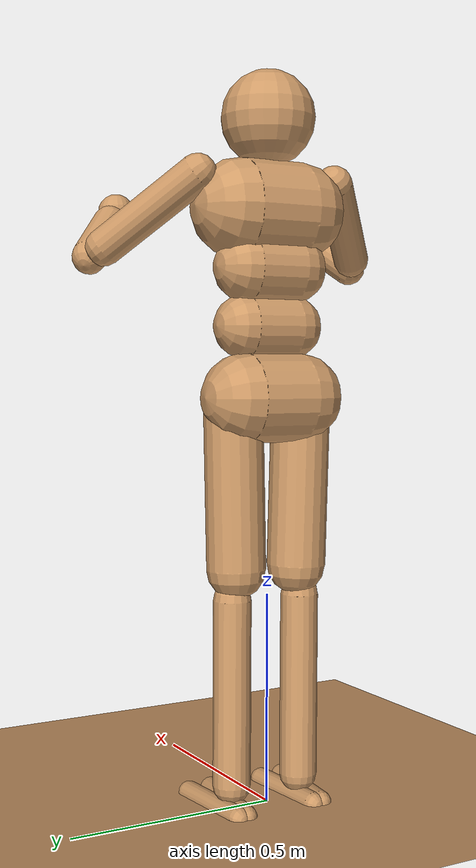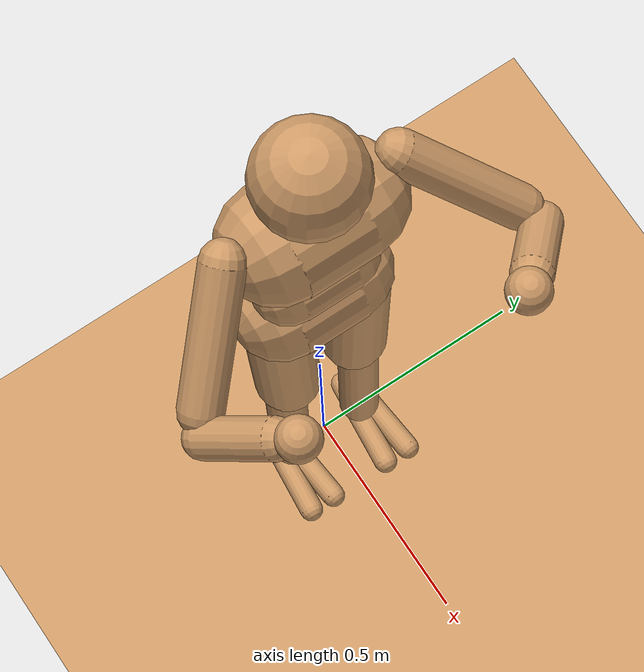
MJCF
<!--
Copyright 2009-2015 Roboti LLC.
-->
<mujoco model='humanoid (v1.31)'>
    <compiler inertiafromgeom='true' angle='degree'/>

    <default>
        <joint limited='true' damping='1' armature='0'  />
        <geom contype='1' conaffinity='1' condim='1' rgba='0.8 0.6 .4 1'
        	margin="0.001" solref=".02 1" solimp=".8 .8 .01" material="geom"/>
        <motor ctrlrange='-.4 .4' ctrllimited='true'/>
    </default>

    <option timestep='0.002' iterations="50" solver="PGS">
        <flag energy="enable"/>
    </option>

	<size nkey='5'/>

    <visual>
        <map fogstart="3" fogend="5" force="0.1"/>
        <quality shadowsize="2048"/>
    </visual>

    <asset>
        <texture type="skybox" builtin="gradient" width="100" height="100" rgb1=".4 .6 .8"
            rgb2="0 0 0"/>
        <texture name="texgeom" type="cube" builtin="flat" mark="cross" width="127" height="1278"
            rgb1="0.8 0.6 0.4" rgb2="0.8 0.6 0.4" markrgb="1 1 1" random="0.01"/>
        <texture name="texplane" type="2d" builtin="checker" rgb1=".2 .3 .4" rgb2=".1 0.15 0.2"
            width="100" height="100"/>

        <material name='MatPlane' reflectance='0.5' texture="texplane" texrepeat="1 1" texuniform="true"/>
        <material name='geom' texture="texgeom" texuniform="true"/>
    </asset>

    <worldbody>
        <geom name='floor' pos='0 0 0' size='10 10 0.125' type='plane' material="MatPlane" condim='3'/>

        <body name='torso' pos='0 0 1.4'>
            <light mode='trackcom' directional='false' diffuse='.8 .8 .8' specular='0.3 0.3 0.3' pos='0 0 4.0' dir='0 0 -1'/>

            <joint name='root' type='free' pos='0 0 0' limited='false' damping='0' armature='0' stiffness='0'/>
            <geom name='torso1' type='capsule' fromto='0 -.075 0 0 .075 0'  size='0.115' />
            <geom name='head' type='sphere' pos='0 0 .21' size='.11'/>
            <geom name='uwaist' type='capsule' fromto='-.01 -.06 -0.134934958 -.01 .06 -0.134934958' size='0.08'/>
            <body name='lwaist' pos='0 0 -0.26953098724' quat='1.000 0 -0.002 0' >
                <geom name='lwaist' type='capsule' fromto='0 -.06 0 0 .06 0'  size='0.075' />
                <joint name='abdomen_z' type='hinge' pos='0 0 0.065' axis='0 0 1' range='-45 45' damping='5' stiffness='20' armature='0.02' />
                <joint name='abdomen_y' type='hinge' pos='0 0 0.065' axis='0 1 0' range='-75 30' damping='5' stiffness='10' armature='0.02' />
                <body name='pelvis' pos='0 0 -0.165' quat='1.000 0 -0.002 0' >
                    <joint name='abdomen_x' type='hinge' pos='0 0 0.1' axis='1 0 0' range='-35 35' damping='5' stiffness='10' armature='0.02' />
                    <geom name='butt' type='capsule' fromto='-.02 -.07 0 -.02 .07 0'  size='0.105' />
                    <body name='right_thigh' pos='0 -0.0920235 0' >
                        <joint name='right_hip_x' type='hinge' pos='0 0 0' axis='1 0 0' range='-25 5'   damping='5' stiffness='10' armature='0.01' />
                        <joint name='right_hip_z' type='hinge' pos='0 0 0' axis='0 0 1' range='-60 35'  damping='5' stiffness='10' armature='0.01' />
                        <joint name='right_hip_y' type='hinge' pos='0 0 0' axis='0 1 0' range='-110 20' damping='5' stiffness='20' armature='0.0080' />
                        <geom name='right_thigh1' type='capsule' fromto='0 0 0 0 0.01 -.40'  size='0.07' />
                        <body name='right_shin' pos='0 0.0 -0.472415' >
                            <joint name='right_knee' type='hinge' pos='0 0 0' axis='0 -1 0' range='-160 -2' armature='0.0060' />
                            <geom name='right_shin1' type='capsule' fromto='0 0 0 0 0 -.44'   size='0.045' />
                            <body name='right_foot' pos='0 0 -0.494431' >
                                <joint name='right_ankle_y' type='hinge' pos='0 0 0.0' axis='0 1 0'   range='-50 50' stiffness='4000' armature='0.0008' />
                                <joint name='right_ankle_x' type='hinge' pos='0 0 0.0' axis='1 0 0.5' range='-50 50' stiffness='1000'  armature='0.0006' />
                                <geom name='right_foot_cap1' type='capsule' fromto='-.07 -0.02 0 0.14 -0.04 0'  size='0.026325' />
                                <geom name='right_foot_cap2' type='capsule' fromto='-.07 0 0 0.14  0.02 0'  size='0.026325' />
                            </body>
                        </body>
                    </body>
                    <body name='left_thigh' pos='0 0.0920235 0' >
                        <joint name='left_hip_x' type='hinge' pos='0 0 0' axis='-1 0 0' range='-25 5'  damping='5' stiffness='10' armature='0.01' />
                        <joint name='left_hip_z' type='hinge' pos='0 0 0' axis='0 0 -1' range='-60 35' damping='5' stiffness='10' armature='0.01' />
                        <joint name='left_hip_y' type='hinge' pos='0 0 0' axis='0 1 0' range='-120 20' damping='5' stiffness='20' armature='0.01' />
                        <geom name='left_thigh1' type='capsule' fromto='0 0 0 0 -0.01 -.40'  size='0.07' />
                        <body name='left_shin' pos='0 0.0 -0.472415' >
                            <joint name='left_knee' type='hinge' pos='0 0 0' axis='0 -1 0' range='-160 -2' stiffness='1' armature='0.0060' />
                            <geom name='left_shin1' type='capsule' fromto='0 0 0 0 0 -.44'   size='0.045' />
                            <body name='left_foot' pos='0 0 -0.494431' >
                                <joint name='left_ankle_y' type='hinge' pos='0 0 0.0' axis='0 1 0'   range='-50 50'  stiffness='4000' armature='0.0008' />
                                <joint name='left_ankle_x' type='hinge' pos='0 0 0.0' axis='1 0 0.5' range='-50 50'  stiffness='1000'  armature='0.0006' />
                                <geom name='left_foot_cap1' type='capsule' fromto='-.07 0.02 0 0.14 0.04 0'  size='0.026325' />
                                <geom name='left_foot_cap2' type='capsule' fromto='-.07 0 0 0.14  -0.02 0'  size='0.026325' />
                            </body>
                        </body>
                    </body>
                </body>
            </body>
            <body name='right_upper_arm' pos='0 -0.183499 0.071838' >
                <joint name='right_shoulder1' type='hinge' pos='0 0 0' axis='2 1 1'  range='-85 60' stiffness='1' armature='0.0068' />
                <joint name='right_shoulder2' type='hinge' pos='0 0 0' axis='0 -1 1' range='-85 60' stiffness='1'  armature='0.0051' />
                <geom name='right_uarm1' type='capsule' fromto='0 0 0 .16 -.16 -.16'  size='0.044 0.16' />
                <body name='right_lower_arm' pos='0.18987780183 -0.18987780183 -0.18987780183' >
                    <joint name='right_elbow' type='hinge' pos='0 0 0' axis='0 -1 1' range='-90 50'  stiffness='0' armature='0.0028' />
                    <geom name='right_larm' type='capsule' fromto='0.01 0.01 0.01 0.10352207403 0.10352207403 0.10352207403'  size='0.041' />
                    <geom name='right_hand' type='sphere' pos='0.13274148714 0.13274148714 0.13274148714'  size='0.044'/>
                </body>
            </body>
            <body name='left_upper_arm' pos='0 0.183499 0.071838' >
                <joint name='left_shoulder1' type='hinge' pos='0 0 0' axis='2 -1 1' range='-60 85' stiffness='1' armature='0.0068' />
                <joint name='left_shoulder2' type='hinge' pos='0 0 0' axis='0 1 1' range='-60 85'  stiffness='1' armature='0.0051' />
                <geom name='left_uarm1' type='capsule' fromto='0 0 0 .16 .16 -.16'  size='0.044 0.16' />
                <body name='left_lower_arm' pos='0.18987780183 0.18987780183 -0.18987780183' >
                    <joint name='left_elbow' type='hinge' pos='0 0 0' axis='0 -1 -1' range='-90 50' stiffness='0' armature='0.0028' />
                    <geom name='left_larm' type='capsule' fromto='0.01 -0.01 0.01 0.10352207403 -0.10352207403 0.10352207403'  size='0.041' />
                    <geom name='left_hand' type='sphere' pos='0.13274148714 -0.13274148714 0.13274148714'  size='0.044'/>
                </body>
            </body>
        </body>
    </worldbody>

    <tendon>
        <fixed name='left_hipknee'>
            <joint joint='left_hip_y'  coef='-1'/>
            <joint joint='left_knee'  coef='1'/>
        </fixed>
        <fixed name='right_hipknee'>
            <joint joint='right_hip_y'  coef='-1'/>
            <joint joint='right_knee'  coef='1'/>
        </fixed>
    </tendon>

    <keyframe>
        <key qpos='-0.0233227 0.00247283 0.0784829 0.728141 0.00223397 -0.685422 -0.00181805 -0.000580139 -0.245119 0.0329713 -0.0461148 0.0354257 0.252234 -0.0347763 -0.4663 -0.0313013 0.0285638 0.0147285 0.264063 -0.0346441 -0.559198 0.021724 -0.0333332 -0.718563 0.872778 0.000260393 0.733088 0.872748'      />
        <key qpos='0.0168601 -0.00192002 0.127167 0.762693 0.00191588 0.646754 -0.00210291 -0.000199049 0.0573113 -4.05731e-005 0.0134177 -0.00468944 0.0985945 -0.282695 -0.0469067 0.00874203 0.0263262 -0.00295056 0.0984851 -0.282098 -0.044293 0.00475795 0.127371 -0.42895 0.882402 -0.0980573 0.428506 0.88193'  />
        <key qpos='0.000471586 0.0317577 0.210587 0.758805 -0.583984 0.254155 0.136322 -0.0811633 0.0870309 -0.0935227 0.0904958 -0.0278004 -0.00978614 -0.359193 0.139761 -0.240168 0.060149 0.237062 -0.00622109 -0.252598 -0.00376874 -0.160597 0.25253 -0.278634 0.834376 -0.990444 -0.169065 0.652876' />
        <key qpos='-0.0602175 0.048078 0.194579 -0.377418 -0.119412 -0.675073 -0.622553 0.139093 0.0710746 -0.0506027 0.0863461 0.196165 -0.0276685 -0.521954 -0.267784 0.179051 0.0371897 0.0560134 -0.032595 -0.0480022 0.0357436 0.108502 0.963806 0.157805 0.873092 -1.01145 -0.796409 0.24736' />
    </keyframe>

    <actuator>
        <motor name='abdomen_y'       gear='200' joint='abdomen_y' />
        <motor name='abdomen_z'       gear='200' joint='abdomen_z' />
        <motor name='abdomen_x'       gear='200' joint='abdomen_x' />
        <motor name='right_hip_x'     gear='200' joint='right_hip_x' />
        <motor name='right_hip_z'     gear='200' joint='right_hip_z' />
        <motor name='right_hip_y'     gear='600' joint='right_hip_y' />
        <motor name='right_knee'      gear='400' joint='right_knee' />
        <motor name='right_ankle_x'   gear='100' joint='right_ankle_x' />
        <motor name='right_ankle_y'   gear='100' joint='right_ankle_y' />
        <motor name='left_hip_x'      gear='200' joint='left_hip_x' />
        <motor name='left_hip_z'      gear='200' joint='left_hip_z' />
        <motor name='left_hip_y'      gear='600' joint='left_hip_y' />
        <motor name='left_knee'       gear='400' joint='left_knee' />
        <motor name='left_ankle_x'    gear='100' joint='left_ankle_x' />
        <motor name='left_ankle_y'    gear='100' joint='left_ankle_y' />
        <motor name='right_shoulder1' gear='100' joint='right_shoulder1' />
        <motor name='right_shoulder2' gear='100' joint='right_shoulder2' />
        <motor name='right_elbow'     gear='200' joint='right_elbow' />
        <motor name='left_shoulder1'  gear='100' joint='left_shoulder1' />
        <motor name='left_shoulder2'  gear='100' joint='left_shoulder2' />
        <motor name='left_elbow'      gear='200' joint='left_elbow' />
    </actuator>

</mujoco>
